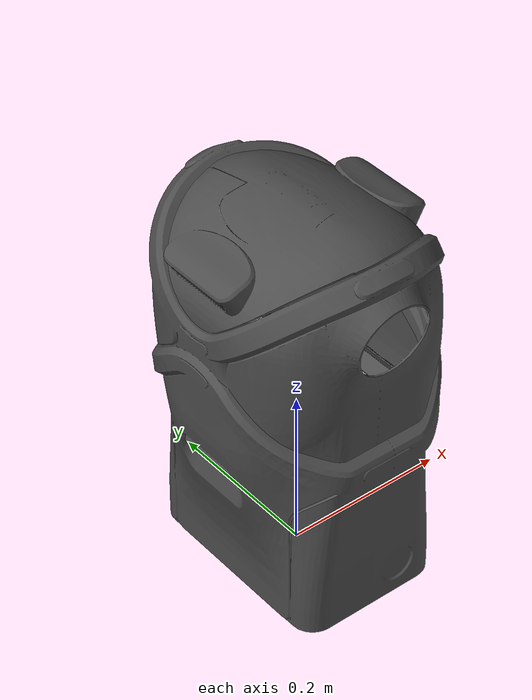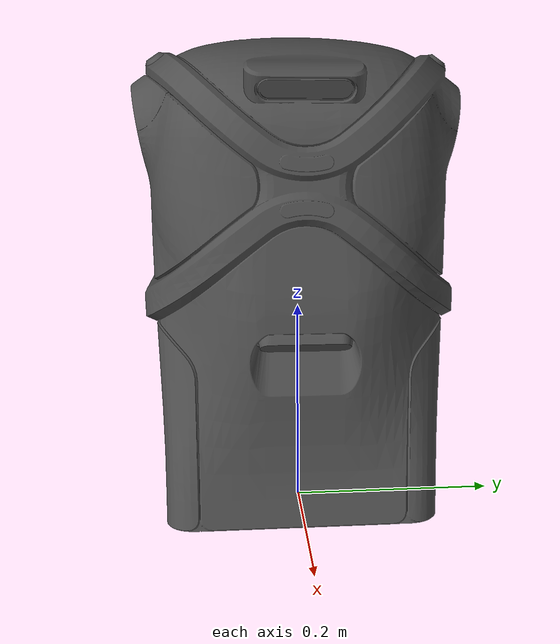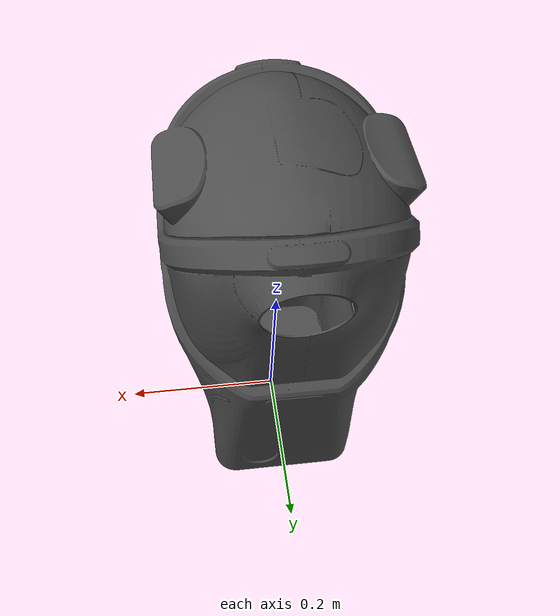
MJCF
<mujoco model="torso_link">
  <default>
    <default class="visual">
      <geom group="2" type="mesh" contype="0" conaffinity="0"/>
    </default>
    <default class="collision">
      <geom group="3" type="mesh"/>
    </default>
  </default>
  <asset>
    <material name="mtl_m5" specular="0.20000000000000004" shininess="1.0" rgba="0.29803922 0.29803922 0.29803922 1.0"/>
    <mesh file="torso_link.obj"/>
  </asset>
  <worldbody>
    <body name="torso_link">
      <geom material="mtl_m5" mesh="torso_link" class="visual"/>
      <geom mesh="torso_link" class="collision"/>
    </body>
  </worldbody>
</mujoco>
